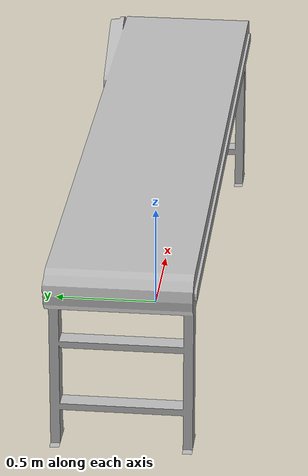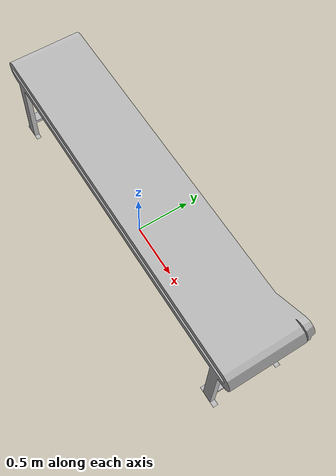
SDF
<?xml version="1.0" ?>
<sdf version="1.6">
    <!-- an invisible conveyor belt -->
    <model name="conveyor_belt">

      <model name="conveyor_belt_fixed">
        <static>true</static>
        <pose>-1.502  0.322 0 0 0 0</pose>
        <link name="link">
          <pose>0 0 0 0 0 0</pose>
	<visual name="belt_mesh">
	    <geometry>
		<mesh>
		    <uri>model://conveyor/model.dae</uri>
		</mesh>
	    </geometry>
	</visual>
        </link>
      </model>

      <model name="conveyor_belt_moving">
        <static>false</static>
        <pose>0 0 0 0 0 0</pose>
        <link name="belt">
          <pose>0 0 0.795 0 0 0</pose>
          <inertial>
            <inertia>
              <ixx>3.8185</ixx>
              <ixy>0</ixy>
              <ixz>0</ixz>
              <iyy>1781.5</iyy>
              <iyz>0</iyz>
              <izz>1784.72</izz>
            </inertia>
            <mass>100</mass>
          </inertial>
          <!--Uncomment for debugging -->
          <collision name="belt_collision">
            <geometry>
              <box>
                <size>3.2 0.65461 0.18862</size>
              </box>
            </geometry>
            <surface>
              <friction>
                <ode>
                  <mu>1.0</mu>
                  <mu2>1.0</mu2>
                </ode>
                <torsional>
                  <coefficient>1000.0</coefficient>
                  <patch_radius>0.1</patch_radius>
                </torsional>
              </friction>
            </surface>
          </collision>
        </link>
      </model>

      <joint name="belt_joint" type="prismatic">
        <parent>conveyor_belt_fixed::link</parent>
        <child>conveyor_belt_moving::belt</child>
        <axis>
          <xyz>1 0 0</xyz>
          <limit>
            <lower>0</lower>
            <upper>1.0</upper>
          </limit>
        </axis>
      </joint>

      <plugin name="conveyor_belt_plugin" filename="libROSConveyorBeltPlugin.so">
        <robot_namespace>/ariac</robot_namespace>
        <population_rate_modifier_topic>/ariac/population/rate_modifier</population_rate_modifier_topic>
        <link>conveyor_belt::conveyor_belt_moving::belt</link>
        <power>100</power>
      </plugin>
    </model>
</sdf>
